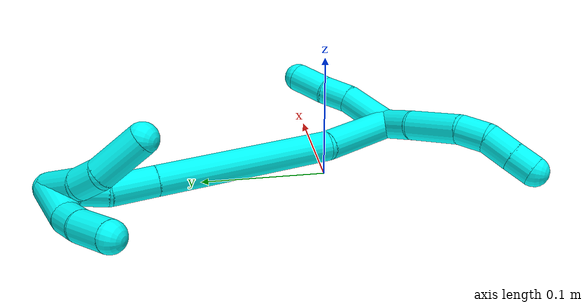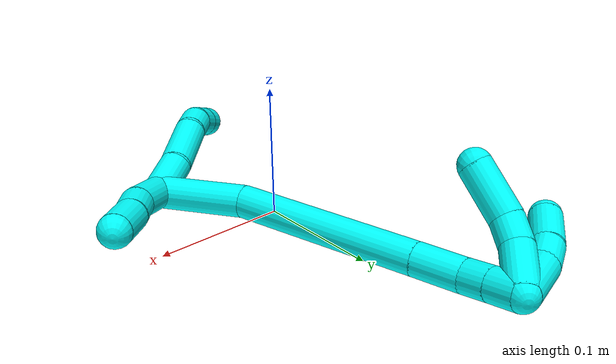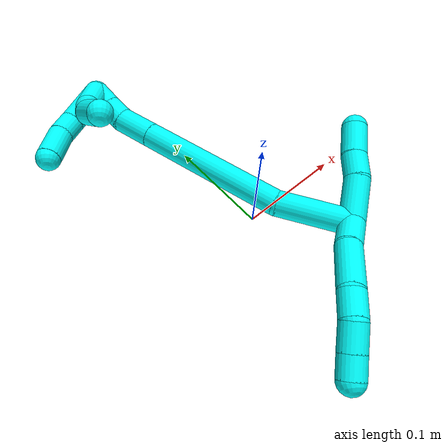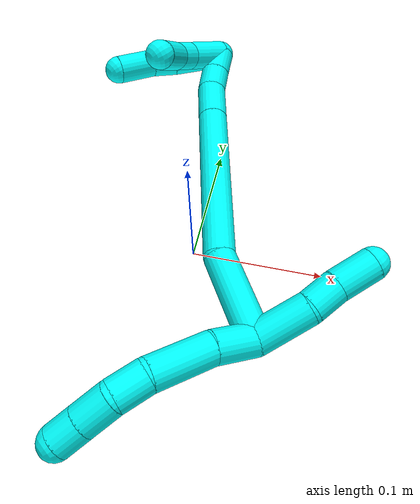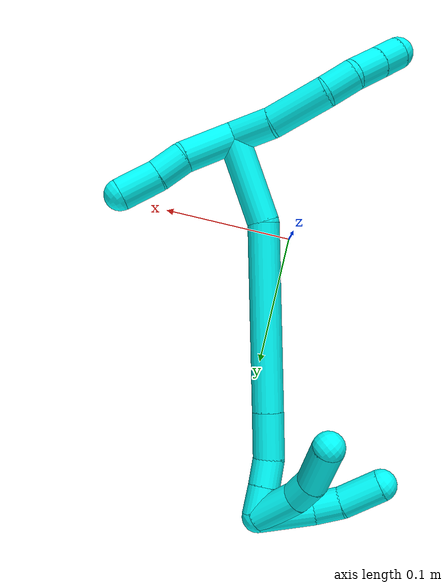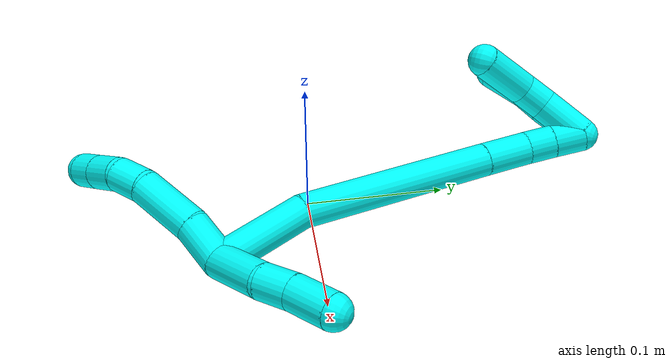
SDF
<sdf version="1.7">
 <world name="default">
  <model name="3">
   <static>0</static>
   <link name="3">
    <collision name="collision-cylinder-e_1_2_8">
     <pose>-0.007703 -0.000753 -0.014416 3.08942 -0.490168 -2.93369</pose>
     <geometry><cylinder><radius>0.0125</radius><length>0.032725</length></cylinder></geometry>
     <surface>
      <friction><ode><mu>1.16</mu><mu2>1.16</mu2><slip1>0</slip1><slip2>0</slip2></ode></friction>
      <contact><ode><kp>1e+06</kp><kd>1</kd><max_vel>0</max_vel><min_depth>0.001</min_depth></ode></contact>
     </surface>
    </collision>
    <visual name="visual-cylinder-e_1_2_8">
     <pose>-0.007703 -0.000753 -0.014416 3.08942 -0.490168 -2.93369</pose>
     <geometry><cylinder><radius>0.0125</radius><length>0.032725</length></cylinder></geometry>
     <material><ambient>0.003922 1 0.996078 1</ambient></material>
    </visual>
    <collision name="collision-cylinder-e_2_8_9">
     <pose>-0.022442 -0.003162 -0.051375 3.06825 -0.301781 -2.66805</pose>
     <geometry><cylinder><radius>0.0125</radius><length>0.047347</length></cylinder></geometry>
     <surface>
      <friction><ode><mu>1.16</mu><mu2>1.16</mu2><slip1>0</slip1><slip2>0</slip2></ode></friction>
      <contact><ode><kp>1e+06</kp><kd>1</kd><max_vel>0</max_vel><min_depth>0.001</min_depth></ode></contact>
     </surface>
    </collision>
    <visual name="visual-cylinder-e_2_8_9">
     <pose>-0.022442 -0.003162 -0.051375 3.06825 -0.301781 -2.66805</pose>
     <geometry><cylinder><radius>0.0125</radius><length>0.047347</length></cylinder></geometry>
     <material><ambient>0.003922 1 0.996078 1</ambient></material>
    </visual>
    <collision name="collision-cylinder-e_3_9_10">
     <pose>-0.030703 -0.003662 -0.086211 -3.04782 -0.098865 1.62373</pose>
     <geometry><cylinder><radius>0.0125</radius><length>0.024816</length></cylinder></geometry>
     <surface>
      <friction><ode><mu>1.16</mu><mu2>1.16</mu2><slip1>0</slip1><slip2>0</slip2></ode></friction>
      <contact><ode><kp>1e+06</kp><kd>1</kd><max_vel>0</max_vel><min_depth>0.001</min_depth></ode></contact>
     </surface>
    </collision>
    <visual name="visual-cylinder-e_3_9_10">
     <pose>-0.030703 -0.003662 -0.086211 -3.04782 -0.098865 1.62373</pose>
     <geometry><cylinder><radius>0.0125</radius><length>0.024816</length></cylinder></geometry>
     <material><ambient>0.003922 1 0.996078 1</ambient></material>
    </visual>
    <collision name="collision-cylinder-e_4_10_11">
     <pose>-0.030863 0.002197 -0.109991 -2.75298 0.085573 -0.428438</pose>
     <geometry><cylinder><radius>0.0125</radius><length>0.024915</length></cylinder></geometry>
     <surface>
      <friction><ode><mu>1.16</mu><mu2>1.16</mu2><slip1>0</slip1><slip2>0</slip2></ode></friction>
      <contact><ode><kp>1e+06</kp><kd>1</kd><max_vel>0</max_vel><min_depth>0.001</min_depth></ode></contact>
     </surface>
    </collision>
    <visual name="visual-cylinder-e_4_10_11">
     <pose>-0.030863 0.002197 -0.109991 -2.75298 0.085573 -0.428438</pose>
     <geometry><cylinder><radius>0.0125</radius><length>0.024915</length></cylinder></geometry>
     <material><ambient>0.003922 1 0.996078 1</ambient></material>
    </visual>
    <collision name="collision-cylinder-e_5_11_6">
     <pose>-0.02894 0.010564 -0.130849 -2.76893 0.085078 -0.444124</pose>
     <geometry><cylinder><radius>0.0125</radius><length>0.020197</length></cylinder></geometry>
     <surface>
      <friction><ode><mu>1.16</mu><mu2>1.16</mu2><slip1>0</slip1><slip2>0</slip2></ode></friction>
      <contact><ode><kp>1e+06</kp><kd>1</kd><max_vel>0</max_vel><min_depth>0.001</min_depth></ode></contact>
     </surface>
    </collision>
    <visual name="visual-cylinder-e_5_11_6">
     <pose>-0.02894 0.010564 -0.130849 -2.76893 0.085078 -0.444124</pose>
     <geometry><cylinder><radius>0.0125</radius><length>0.020197</length></cylinder></geometry>
     <material><ambient>0.003922 1 0.996078 1</ambient></material>
    </visual>
    <collision name="collision-cylinder-e_1_2_12">
     <pose>0.001558 -0.007317 0.020472 0.343253 0.071559 0.012409</pose>
     <geometry><cylinder><radius>0.0125</radius><length>0.043593</length></cylinder></geometry>
     <surface>
      <friction><ode><mu>1.16</mu><mu2>1.16</mu2><slip1>0</slip1><slip2>0</slip2></ode></friction>
      <contact><ode><kp>1e+06</kp><kd>1</kd><max_vel>0</max_vel><min_depth>0.001</min_depth></ode></contact>
     </surface>
    </collision>
    <visual name="visual-cylinder-e_1_2_12">
     <pose>0.001558 -0.007317 0.020472 0.343253 0.071559 0.012409</pose>
     <geometry><cylinder><radius>0.0125</radius><length>0.043593</length></cylinder></geometry>
     <material><ambient>0.003922 1 0.996078 1</ambient></material>
    </visual>
    <collision name="collision-cylinder-e_2_12_13">
     <pose>0.002889 -0.016084 0.053122 0.118546 -0.018543 -0.0011</pose>
     <geometry><cylinder><radius>0.0125</radius><length>0.024531</length></cylinder></geometry>
     <surface>
      <friction><ode><mu>1.16</mu><mu2>1.16</mu2><slip1>0</slip1><slip2>0</slip2></ode></friction>
      <contact><ode><kp>1e+06</kp><kd>1</kd><max_vel>0</max_vel><min_depth>0.001</min_depth></ode></contact>
     </surface>
    </collision>
    <visual name="visual-cylinder-e_2_12_13">
     <pose>0.002889 -0.016084 0.053122 0.118546 -0.018543 -0.0011</pose>
     <geometry><cylinder><radius>0.0125</radius><length>0.024531</length></cylinder></geometry>
     <material><ambient>0.003922 1 0.996078 1</ambient></material>
    </visual>
    <collision name="collision-cylinder-e_3_13_5">
     <pose>0.003991 -0.020905 0.08082 0.213871 0.083472 0.008965</pose>
     <geometry><cylinder><radius>0.0125</radius><length>0.031877</length></cylinder></geometry>
     <surface>
      <friction><ode><mu>1.16</mu><mu2>1.16</mu2><slip1>0</slip1><slip2>0</slip2></ode></friction>
      <contact><ode><kp>1e+06</kp><kd>1</kd><max_vel>0</max_vel><min_depth>0.001</min_depth></ode></contact>
     </surface>
    </collision>
    <visual name="visual-cylinder-e_3_13_5">
     <pose>0.003991 -0.020905 0.08082 0.213871 0.083472 0.008965</pose>
     <geometry><cylinder><radius>0.0125</radius><length>0.031877</length></cylinder></geometry>
     <material><ambient>0.003922 1 0.996078 1</ambient></material>
    </visual>
    <collision name="collision-cylinder-e_1_2_14">
     <pose>-0.026935 0.019414 0.012406 -1.00216 -0.863191 0.494186</pose>
     <geometry><cylinder><radius>0.0125</radius><length>0.070888</length></cylinder></geometry>
     <surface>
      <friction><ode><mu>1.16</mu><mu2>1.16</mu2><slip1>0</slip1><slip2>0</slip2></ode></friction>
      <contact><ode><kp>1e+06</kp><kd>1</kd><max_vel>0</max_vel><min_depth>0.001</min_depth></ode></contact>
     </surface>
    </collision>
    <visual name="visual-cylinder-e_1_2_14">
     <pose>-0.026935 0.019414 0.012406 -1.00216 -0.863191 0.494186</pose>
     <geometry><cylinder><radius>0.0125</radius><length>0.070888</length></cylinder></geometry>
     <material><ambient>0.003922 1 0.996078 1</ambient></material>
    </visual>
    <collision name="collision-cylinder-e_2_14_15">
     <pose>-0.099157 0.074843 0.070528 -0.667267 -0.661284 0.236816</pose>
     <geometry><cylinder><radius>0.0125</radius><length>0.147486</length></cylinder></geometry>
     <surface>
      <friction><ode><mu>1.16</mu><mu2>1.16</mu2><slip1>0</slip1><slip2>0</slip2></ode></friction>
      <contact><ode><kp>1e+06</kp><kd>1</kd><max_vel>0</max_vel><min_depth>0.001</min_depth></ode></contact>
     </surface>
    </collision>
    <visual name="visual-cylinder-e_2_14_15">
     <pose>-0.099157 0.074843 0.070528 -0.667267 -0.661284 0.236816</pose>
     <geometry><cylinder><radius>0.0125</radius><length>0.147486</length></cylinder></geometry>
     <material><ambient>0.003922 1 0.996078 1</ambient></material>
    </visual>
    <collision name="collision-cylinder-e_3_15_16">
     <pose>-0.155708 0.119926 0.127752 -0.667319 -0.655398 0.234589</pose>
     <geometry><cylinder><radius>0.0125</radius><length>0.036962</length></cylinder></geometry>
     <surface>
      <friction><ode><mu>1.16</mu><mu2>1.16</mu2><slip1>0</slip1><slip2>0</slip2></ode></friction>
      <contact><ode><kp>1e+06</kp><kd>1</kd><max_vel>0</max_vel><min_depth>0.001</min_depth></ode></contact>
     </surface>
    </collision>
    <visual name="visual-cylinder-e_3_15_16">
     <pose>-0.155708 0.119926 0.127752 -0.667319 -0.655398 0.234589</pose>
     <geometry><cylinder><radius>0.0125</radius><length>0.036962</length></cylinder></geometry>
     <material><ambient>0.003922 1 0.996078 1</ambient></material>
    </visual>
    <collision name="collision-cylinder-e_4_16_17">
     <pose>-0.173314 0.132024 0.147507 -0.352212 -0.625266 0.114912</pose>
     <geometry><cylinder><radius>0.0125</radius><length>0.021669</length></cylinder></geometry>
     <surface>
      <friction><ode><mu>1.16</mu><mu2>1.16</mu2><slip1>0</slip1><slip2>0</slip2></ode></friction>
      <contact><ode><kp>1e+06</kp><kd>1</kd><max_vel>0</max_vel><min_depth>0.001</min_depth></ode></contact>
     </surface>
    </collision>
    <visual name="visual-cylinder-e_4_16_17">
     <pose>-0.173314 0.132024 0.147507 -0.352212 -0.625266 0.114912</pose>
     <geometry><cylinder><radius>0.0125</radius><length>0.021669</length></cylinder></geometry>
     <material><ambient>0.003922 1 0.996078 1</ambient></material>
    </visual>
    <collision name="collision-cylinder-e_5_17_1">
     <pose>-0.186179 0.137951 0.164766 -0.310892 -0.603373 0.097455</pose>
     <geometry><cylinder><radius>0.0125</radius><length>0.022995</length></cylinder></geometry>
     <surface>
      <friction><ode><mu>1.16</mu><mu2>1.16</mu2><slip1>0</slip1><slip2>0</slip2></ode></friction>
      <contact><ode><kp>1e+06</kp><kd>1</kd><max_vel>0</max_vel><min_depth>0.001</min_depth></ode></contact>
     </surface>
    </collision>
    <visual name="visual-cylinder-e_5_17_1">
     <pose>-0.186179 0.137951 0.164766 -0.310892 -0.603373 0.097455</pose>
     <geometry><cylinder><radius>0.0125</radius><length>0.022995</length></cylinder></geometry>
     <material><ambient>0.003922 1 0.996078 1</ambient></material>
    </visual>
    <collision name="collision-cylinder-e_1_1_18">
     <pose>-0.199029 0.136141 0.157118 2.86628 -0.350309 -1.81326</pose>
     <geometry><cylinder><radius>0.0125</radius><length>0.036865</length></cylinder></geometry>
     <surface>
      <friction><ode><mu>1.16</mu><mu2>1.16</mu2><slip1>0</slip1><slip2>0</slip2></ode></friction>
      <contact><ode><kp>1e+06</kp><kd>1</kd><max_vel>0</max_vel><min_depth>0.001</min_depth></ode></contact>
     </surface>
    </collision>
    <visual name="visual-cylinder-e_1_1_18">
     <pose>-0.199029 0.136141 0.157118 2.86628 -0.350309 -1.81326</pose>
     <geometry><cylinder><radius>0.0125</radius><length>0.036865</length></cylinder></geometry>
     <material><ambient>0.003922 1 0.996078 1</ambient></material>
    </visual>
    <collision name="collision-cylinder-e_2_18_19">
     <pose>-0.207602 0.125724 0.131719 2.56279 -0.212076 -0.686613</pose>
     <geometry><cylinder><radius>0.0125</radius><length>0.021356</length></cylinder></geometry>
     <surface>
      <friction><ode><mu>1.16</mu><mu2>1.16</mu2><slip1>0</slip1><slip2>0</slip2></ode></friction>
      <contact><ode><kp>1e+06</kp><kd>1</kd><max_vel>0</max_vel><min_depth>0.001</min_depth></ode></contact>
     </surface>
    </collision>
    <visual name="visual-cylinder-e_2_18_19">
     <pose>-0.207602 0.125724 0.131719 2.56279 -0.212076 -0.686613</pose>
     <geometry><cylinder><radius>0.0125</radius><length>0.021356</length></cylinder></geometry>
     <material><ambient>0.003922 1 0.996078 1</ambient></material>
    </visual>
    <collision name="collision-cylinder-e_3_19_4">
     <pose>-0.21118 0.103817 0.109855 2.25183 -0.063692 -0.13344</pose>
     <geometry><cylinder><radius>0.0125</radius><length>0.041779</length></cylinder></geometry>
     <surface>
      <friction><ode><mu>1.16</mu><mu2>1.16</mu2><slip1>0</slip1><slip2>0</slip2></ode></friction>
      <contact><ode><kp>1e+06</kp><kd>1</kd><max_vel>0</max_vel><min_depth>0.001</min_depth></ode></contact>
     </surface>
    </collision>
    <visual name="visual-cylinder-e_3_19_4">
     <pose>-0.21118 0.103817 0.109855 2.25183 -0.063692 -0.13344</pose>
     <geometry><cylinder><radius>0.0125</radius><length>0.041779</length></cylinder></geometry>
     <material><ambient>0.003922 1 0.996078 1</ambient></material>
    </visual>
    <collision name="collision-cylinder-e_1_1_20">
     <pose>-0.201713 0.148932 0.15535 -2.72816 -0.420909 1.58926</pose>
     <geometry><cylinder><radius>0.0125</radius><length>0.044099</length></cylinder></geometry>
     <surface>
      <friction><ode><mu>1.16</mu><mu2>1.16</mu2><slip1>0</slip1><slip2>0</slip2></ode></friction>
      <contact><ode><kp>1e+06</kp><kd>1</kd><max_vel>0</max_vel><min_depth>0.001</min_depth></ode></contact>
     </surface>
    </collision>
    <visual name="visual-cylinder-e_1_1_20">
     <pose>-0.201713 0.148932 0.15535 -2.72816 -0.420909 1.58926</pose>
     <geometry><cylinder><radius>0.0125</radius><length>0.044099</length></cylinder></geometry>
     <material><ambient>0.003922 1 0.996078 1</ambient></material>
    </visual>
    <collision name="collision-cylinder-e_2_20_21">
     <pose>-0.215712 0.158147 0.126956 -3.02867 -0.461689 2.66961</pose>
     <geometry><cylinder><radius>0.0125</radius><length>0.022403</length></cylinder></geometry>
     <surface>
      <friction><ode><mu>1.16</mu><mu2>1.16</mu2><slip1>0</slip1><slip2>0</slip2></ode></friction>
      <contact><ode><kp>1e+06</kp><kd>1</kd><max_vel>0</max_vel><min_depth>0.001</min_depth></ode></contact>
     </surface>
    </collision>
    <visual name="visual-cylinder-e_2_20_21">
     <pose>-0.215712 0.158147 0.126956 -3.02867 -0.461689 2.66961</pose>
     <geometry><cylinder><radius>0.0125</radius><length>0.022403</length></cylinder></geometry>
     <material><ambient>0.003922 1 0.996078 1</ambient></material>
    </visual>
    <collision name="collision-cylinder-e_3_21_3">
     <pose>-0.225638 0.159309 0.100986 -3.13964 -0.299184 3.12864</pose>
     <geometry><cylinder><radius>0.0125</radius><length>0.033498</length></cylinder></geometry>
     <surface>
      <friction><ode><mu>1.16</mu><mu2>1.16</mu2><slip1>0</slip1><slip2>0</slip2></ode></friction>
      <contact><ode><kp>1e+06</kp><kd>1</kd><max_vel>0</max_vel><min_depth>0.001</min_depth></ode></contact>
     </surface>
    </collision>
    <visual name="visual-cylinder-e_3_21_3">
     <pose>-0.225638 0.159309 0.100986 -3.13964 -0.299184 3.12864</pose>
     <geometry><cylinder><radius>0.0125</radius><length>0.033498</length></cylinder></geometry>
     <material><ambient>0.003922 1 0.996078 1</ambient></material>
    </visual>
    <collision name="collision-sphere-3">
     <pose>-0.230575 0.15934 0.084981 0 -0 0</pose>
     <geometry><sphere><radius>0.0125</radius></sphere></geometry>
     <surface>
      <friction><ode><mu>1.16</mu><mu2>1.16</mu2><slip1>0</slip1><slip2>0</slip2></ode></friction>
      <contact><ode><kp>1e+06</kp><kd>1</kd><max_vel>0</max_vel><min_depth>0.001</min_depth></ode></contact>
     </surface>
    </collision>
    <visual name="visual-sphere-3">
     <pose>-0.230575 0.15934 0.084981 0 -0 0</pose>
     <geometry><sphere><radius>0.0125</radius></sphere></geometry>
     <material><ambient>0.003922 1 0.996078 1</ambient></material>
    </visual>
    <collision name="collision-sphere-21">
     <pose>-0.220701 0.159277 0.116991 0 -0 0</pose>
     <geometry><sphere><radius>0.0125</radius></sphere></geometry>
     <surface>
      <friction><ode><mu>1.16</mu><mu2>1.16</mu2><slip1>0</slip1><slip2>0</slip2></ode></friction>
      <contact><ode><kp>1e+06</kp><kd>1</kd><max_vel>0</max_vel><min_depth>0.001</min_depth></ode></contact>
     </surface>
    </collision>
    <visual name="visual-sphere-21">
     <pose>-0.220701 0.159277 0.116991 0 -0 0</pose>
     <geometry><sphere><radius>0.0125</radius></sphere></geometry>
     <material><ambient>0.003922 1 0.996078 1</ambient></material>
    </visual>
    <collision name="collision-sphere-20">
     <pose>-0.210722 0.157017 0.136921 0 -0 0</pose>
     <geometry><sphere><radius>0.0125</radius></sphere></geometry>
     <surface>
      <friction><ode><mu>1.16</mu><mu2>1.16</mu2><slip1>0</slip1><slip2>0</slip2></ode></friction>
      <contact><ode><kp>1e+06</kp><kd>1</kd><max_vel>0</max_vel><min_depth>0.001</min_depth></ode></contact>
     </surface>
    </collision>
    <visual name="visual-sphere-20">
     <pose>-0.210722 0.157017 0.136921 0 -0 0</pose>
     <geometry><sphere><radius>0.0125</radius></sphere></geometry>
     <material><ambient>0.003922 1 0.996078 1</ambient></material>
    </visual>
    <collision name="collision-sphere-4">
     <pose>-0.212509 0.08762 0.09673 0 -0 0</pose>
     <geometry><sphere><radius>0.0125</radius></sphere></geometry>
     <surface>
      <friction><ode><mu>1.16</mu><mu2>1.16</mu2><slip1>0</slip1><slip2>0</slip2></ode></friction>
      <contact><ode><kp>1e+06</kp><kd>1</kd><max_vel>0</max_vel><min_depth>0.001</min_depth></ode></contact>
     </surface>
    </collision>
    <visual name="visual-sphere-4">
     <pose>-0.212509 0.08762 0.09673 0 -0 0</pose>
     <geometry><sphere><radius>0.0125</radius></sphere></geometry>
     <material><ambient>0.003922 1 0.996078 1</ambient></material>
    </visual>
    <collision name="collision-sphere-6">
     <pose>-0.028082 0.014227 -0.14022 0 -0 0</pose>
     <geometry><sphere><radius>0.0125</radius></sphere></geometry>
     <surface>
      <friction><ode><mu>1.16</mu><mu2>1.16</mu2><slip1>0</slip1><slip2>0</slip2></ode></friction>
      <contact><ode><kp>1e+06</kp><kd>1</kd><max_vel>0</max_vel><min_depth>0.001</min_depth></ode></contact>
     </surface>
    </collision>
    <visual name="visual-sphere-6">
     <pose>-0.028082 0.014227 -0.14022 0 -0 0</pose>
     <geometry><sphere><radius>0.0125</radius></sphere></geometry>
     <material><ambient>0.003922 1 0.996078 1</ambient></material>
    </visual>
    <collision name="collision-sphere-11">
     <pose>-0.029798 0.0069 -0.121477 0 -0 0</pose>
     <geometry><sphere><radius>0.0125</radius></sphere></geometry>
     <surface>
      <friction><ode><mu>1.16</mu><mu2>1.16</mu2><slip1>0</slip1><slip2>0</slip2></ode></friction>
      <contact><ode><kp>1e+06</kp><kd>1</kd><max_vel>0</max_vel><min_depth>0.001</min_depth></ode></contact>
     </surface>
    </collision>
    <visual name="visual-sphere-11">
     <pose>-0.029798 0.0069 -0.121477 0 -0 0</pose>
     <geometry><sphere><radius>0.0125</radius></sphere></geometry>
     <material><ambient>0.003922 1 0.996078 1</ambient></material>
    </visual>
    <collision name="collision-sphere-10">
     <pose>-0.031928 -0.002506 -0.098504 0 -0 0</pose>
     <geometry><sphere><radius>0.0125</radius></sphere></geometry>
     <surface>
      <friction><ode><mu>1.16</mu><mu2>1.16</mu2><slip1>0</slip1><slip2>0</slip2></ode></friction>
      <contact><ode><kp>1e+06</kp><kd>1</kd><max_vel>0</max_vel><min_depth>0.001</min_depth></ode></contact>
     </surface>
    </collision>
    <visual name="visual-sphere-10">
     <pose>-0.031928 -0.002506 -0.098504 0 -0 0</pose>
     <geometry><sphere><radius>0.0125</radius></sphere></geometry>
     <material><ambient>0.003922 1 0.996078 1</ambient></material>
    </visual>
    <collision name="collision-sphere-9">
     <pose>-0.029478 -0.004818 -0.073917 0 -0 0</pose>
     <geometry><sphere><radius>0.0125</radius></sphere></geometry>
     <surface>
      <friction><ode><mu>1.16</mu><mu2>1.16</mu2><slip1>0</slip1><slip2>0</slip2></ode></friction>
      <contact><ode><kp>1e+06</kp><kd>1</kd><max_vel>0</max_vel><min_depth>0.001</min_depth></ode></contact>
     </surface>
    </collision>
    <visual name="visual-sphere-9">
     <pose>-0.029478 -0.004818 -0.073917 0 -0 0</pose>
     <geometry><sphere><radius>0.0125</radius></sphere></geometry>
     <material><ambient>0.003922 1 0.996078 1</ambient></material>
    </visual>
    <collision name="collision-sphere-2">
     <geometry><sphere><radius>0.0125</radius></sphere></geometry>
     <surface>
      <friction><ode><mu>1.16</mu><mu2>1.16</mu2><slip1>0</slip1><slip2>0</slip2></ode></friction>
      <contact><ode><kp>1e+06</kp><kd>1</kd><max_vel>0</max_vel><min_depth>0.001</min_depth></ode></contact>
     </surface>
    </collision>
    <visual name="visual-sphere-2">
     <geometry><sphere><radius>0.0125</radius></sphere></geometry>
     <material><ambient>0.003922 1 0.996078 1</ambient></material>
    </visual>
    <collision name="collision-sphere-19">
     <pose>-0.20985 0.120014 0.12298 0 -0 0</pose>
     <geometry><sphere><radius>0.0125</radius></sphere></geometry>
     <surface>
      <friction><ode><mu>1.16</mu><mu2>1.16</mu2><slip1>0</slip1><slip2>0</slip2></ode></friction>
      <contact><ode><kp>1e+06</kp><kd>1</kd><max_vel>0</max_vel><min_depth>0.001</min_depth></ode></contact>
     </surface>
    </collision>
    <visual name="visual-sphere-19">
     <pose>-0.20985 0.120014 0.12298 0 -0 0</pose>
     <geometry><sphere><radius>0.0125</radius></sphere></geometry>
     <material><ambient>0.003922 1 0.996078 1</ambient></material>
    </visual>
    <collision name="collision-sphere-8">
     <pose>-0.015406 -0.001506 -0.028832 0 -0 0</pose>
     <geometry><sphere><radius>0.0125</radius></sphere></geometry>
     <surface>
      <friction><ode><mu>1.16</mu><mu2>1.16</mu2><slip1>0</slip1><slip2>0</slip2></ode></friction>
      <contact><ode><kp>1e+06</kp><kd>1</kd><max_vel>0</max_vel><min_depth>0.001</min_depth></ode></contact>
     </surface>
    </collision>
    <visual name="visual-sphere-8">
     <pose>-0.015406 -0.001506 -0.028832 0 -0 0</pose>
     <geometry><sphere><radius>0.0125</radius></sphere></geometry>
     <material><ambient>0.003922 1 0.996078 1</ambient></material>
    </visual>
    <collision name="collision-sphere-12">
     <pose>0.003117 -0.014634 0.040944 0 -0 0</pose>
     <geometry><sphere><radius>0.0125</radius></sphere></geometry>
     <surface>
      <friction><ode><mu>1.16</mu><mu2>1.16</mu2><slip1>0</slip1><slip2>0</slip2></ode></friction>
      <contact><ode><kp>1e+06</kp><kd>1</kd><max_vel>0</max_vel><min_depth>0.001</min_depth></ode></contact>
     </surface>
    </collision>
    <visual name="visual-sphere-12">
     <pose>0.003117 -0.014634 0.040944 0 -0 0</pose>
     <geometry><sphere><radius>0.0125</radius></sphere></geometry>
     <material><ambient>0.003922 1 0.996078 1</ambient></material>
    </visual>
    <collision name="collision-sphere-13">
     <pose>0.002662 -0.017534 0.065299 0 -0 0</pose>
     <geometry><sphere><radius>0.0125</radius></sphere></geometry>
     <surface>
      <friction><ode><mu>1.16</mu><mu2>1.16</mu2><slip1>0</slip1><slip2>0</slip2></ode></friction>
      <contact><ode><kp>1e+06</kp><kd>1</kd><max_vel>0</max_vel><min_depth>0.001</min_depth></ode></contact>
     </surface>
    </collision>
    <visual name="visual-sphere-13">
     <pose>0.002662 -0.017534 0.065299 0 -0 0</pose>
     <geometry><sphere><radius>0.0125</radius></sphere></geometry>
     <material><ambient>0.003922 1 0.996078 1</ambient></material>
    </visual>
    <collision name="collision-sphere-5">
     <pose>0.00532 -0.024276 0.096341 0 -0 0</pose>
     <geometry><sphere><radius>0.0125</radius></sphere></geometry>
     <surface>
      <friction><ode><mu>1.16</mu><mu2>1.16</mu2><slip1>0</slip1><slip2>0</slip2></ode></friction>
      <contact><ode><kp>1e+06</kp><kd>1</kd><max_vel>0</max_vel><min_depth>0.001</min_depth></ode></contact>
     </surface>
    </collision>
    <visual name="visual-sphere-5">
     <pose>0.00532 -0.024276 0.096341 0 -0 0</pose>
     <geometry><sphere><radius>0.0125</radius></sphere></geometry>
     <material><ambient>0.003922 1 0.996078 1</ambient></material>
    </visual>
    <collision name="collision-sphere-14">
     <pose>-0.053869 0.038827 0.024812 0 -0 0</pose>
     <geometry><sphere><radius>0.0125</radius></sphere></geometry>
     <surface>
      <friction><ode><mu>1.16</mu><mu2>1.16</mu2><slip1>0</slip1><slip2>0</slip2></ode></friction>
      <contact><ode><kp>1e+06</kp><kd>1</kd><max_vel>0</max_vel><min_depth>0.001</min_depth></ode></contact>
     </surface>
    </collision>
    <visual name="visual-sphere-14">
     <pose>-0.053869 0.038827 0.024812 0 -0 0</pose>
     <geometry><sphere><radius>0.0125</radius></sphere></geometry>
     <material><ambient>0.003922 1 0.996078 1</ambient></material>
    </visual>
    <collision name="collision-sphere-15">
     <pose>-0.144445 0.110858 0.116244 0 -0 0</pose>
     <geometry><sphere><radius>0.0125</radius></sphere></geometry>
     <surface>
      <friction><ode><mu>1.16</mu><mu2>1.16</mu2><slip1>0</slip1><slip2>0</slip2></ode></friction>
      <contact><ode><kp>1e+06</kp><kd>1</kd><max_vel>0</max_vel><min_depth>0.001</min_depth></ode></contact>
     </surface>
    </collision>
    <visual name="visual-sphere-15">
     <pose>-0.144445 0.110858 0.116244 0 -0 0</pose>
     <geometry><sphere><radius>0.0125</radius></sphere></geometry>
     <material><ambient>0.003922 1 0.996078 1</ambient></material>
    </visual>
    <collision name="collision-sphere-16">
     <pose>-0.166972 0.128994 0.139261 0 -0 0</pose>
     <geometry><sphere><radius>0.0125</radius></sphere></geometry>
     <surface>
      <friction><ode><mu>1.16</mu><mu2>1.16</mu2><slip1>0</slip1><slip2>0</slip2></ode></friction>
      <contact><ode><kp>1e+06</kp><kd>1</kd><max_vel>0</max_vel><min_depth>0.001</min_depth></ode></contact>
     </surface>
    </collision>
    <visual name="visual-sphere-16">
     <pose>-0.166972 0.128994 0.139261 0 -0 0</pose>
     <geometry><sphere><radius>0.0125</radius></sphere></geometry>
     <material><ambient>0.003922 1 0.996078 1</ambient></material>
    </visual>
    <collision name="collision-sphere-17">
     <pose>-0.179655 0.135055 0.155752 0 -0 0</pose>
     <geometry><sphere><radius>0.0125</radius></sphere></geometry>
     <surface>
      <friction><ode><mu>1.16</mu><mu2>1.16</mu2><slip1>0</slip1><slip2>0</slip2></ode></friction>
      <contact><ode><kp>1e+06</kp><kd>1</kd><max_vel>0</max_vel><min_depth>0.001</min_depth></ode></contact>
     </surface>
    </collision>
    <visual name="visual-sphere-17">
     <pose>-0.179655 0.135055 0.155752 0 -0 0</pose>
     <geometry><sphere><radius>0.0125</radius></sphere></geometry>
     <material><ambient>0.003922 1 0.996078 1</ambient></material>
    </visual>
    <collision name="collision-sphere-1">
     <pose>-0.192703 0.140847 0.173779 0 -0 0</pose>
     <geometry><sphere><radius>0.0125</radius></sphere></geometry>
     <surface>
      <friction><ode><mu>1.16</mu><mu2>1.16</mu2><slip1>0</slip1><slip2>0</slip2></ode></friction>
      <contact><ode><kp>1e+06</kp><kd>1</kd><max_vel>0</max_vel><min_depth>0.001</min_depth></ode></contact>
     </surface>
    </collision>
    <visual name="visual-sphere-1">
     <pose>-0.192703 0.140847 0.173779 0 -0 0</pose>
     <geometry><sphere><radius>0.0125</radius></sphere></geometry>
     <material><ambient>0.003922 1 0.996078 1</ambient></material>
    </visual>
    <collision name="collision-sphere-18">
     <pose>-0.205355 0.131434 0.140458 0 -0 0</pose>
     <geometry><sphere><radius>0.0125</radius></sphere></geometry>
     <surface>
      <friction><ode><mu>1.16</mu><mu2>1.16</mu2><slip1>0</slip1><slip2>0</slip2></ode></friction>
      <contact><ode><kp>1e+06</kp><kd>1</kd><max_vel>0</max_vel><min_depth>0.001</min_depth></ode></contact>
     </surface>
    </collision>
    <visual name="visual-sphere-18">
     <pose>-0.205355 0.131434 0.140458 0 -0 0</pose>
     <geometry><sphere><radius>0.0125</radius></sphere></geometry>
     <material><ambient>0.003922 1 0.996078 1</ambient></material>
    </visual>
    <inertial>
     <pose>-0.100493 0.065322 0.058141 0 -0 0</pose>
     <mass>0.75</mass>
     <inertia><ixx>0.00028</ixx><ixy>0</ixy><ixz>0</ixz><iyy>0.000362</iyy><iyz>0</iyz><izz>6.1e-05</izz></inertia>
    </inertial>
   </link>
   <pose>0.060685 -0.066608 0.012525 -1.5269 0.628588 -0.618214</pose>
  </model>
 </world>
</sdf>
